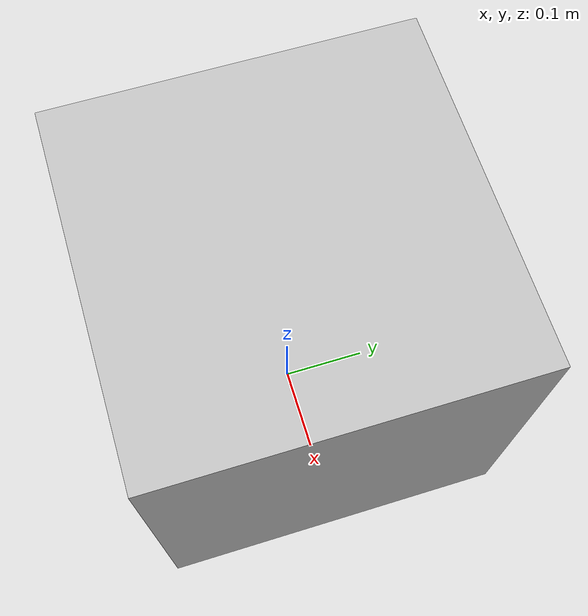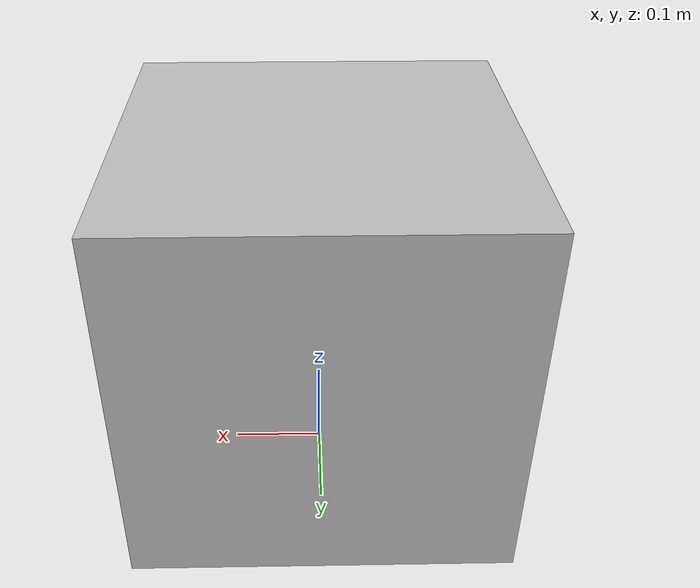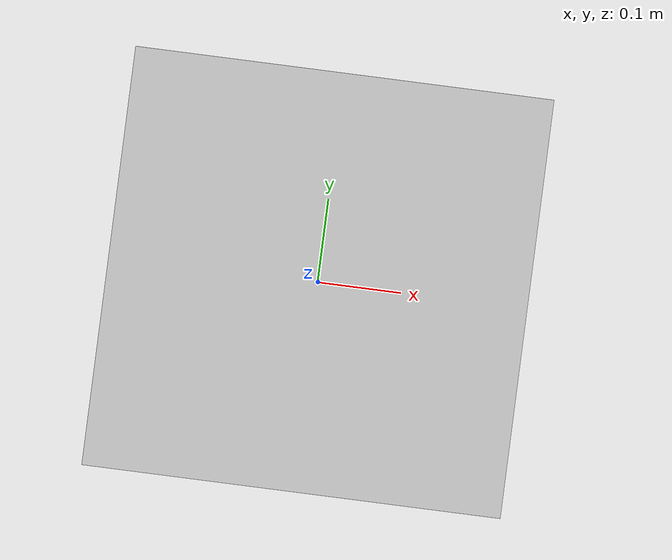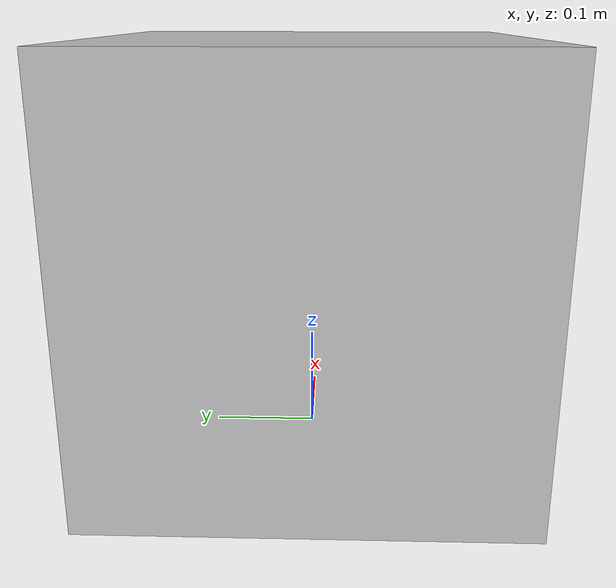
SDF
<?xml version="1.0" ?>
<sdf version="1.6">
  <model name="pizza_box">
    <static>false</static>
    <link name="link">

      <inertial>
        <mass>0.700</mass> <pose>0 0 0.0175 0 0 0</pose> <inertia>
          <ixx>0.021</ixx> <ixy>0</ixy> <ixz>0</ixz>
          <iyy>0.0099</iyy> <iyz>0</iyz>
          <izz>0.031</izz>
        </inertia>
      </inertial>

      <collision name="collision">
        <pose>0 0 0.0175 0 0 0</pose> <geometry>
          <box>
            <size>0.41 0.60 0.035</size> </box>
        </geometry>
        <surface>
          <friction>
            <ode>
              <mu>1.0</mu> <mu2>1.0</mu2>
            </ode>
          </friction>
          <contact>
            <ode>
              <kp>1000000.0</kp> <kd>1.0</kd>
            </ode>
          </contact>
        </surface>
      </collision>

      <visual name="visual">
        <pose>0 0 0 0 0 0</pose>
        <geometry>
          <mesh>
            <uri>model://pizza_box/meshes/pizza_box.dae</uri>
          </mesh>
        </geometry>
      </visual>

    </link>
  </model>
</sdf>
